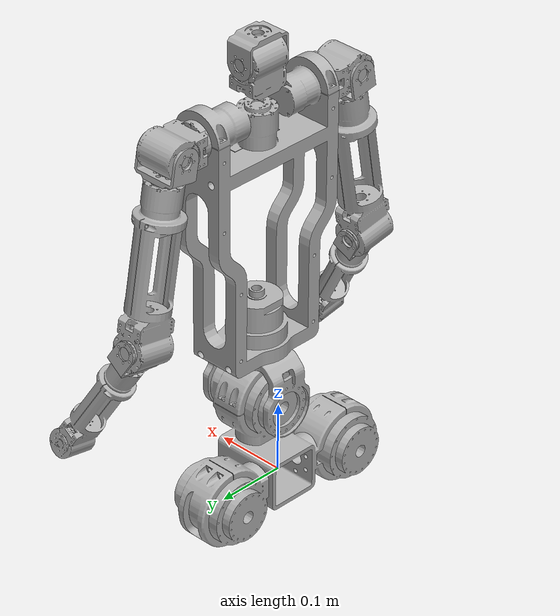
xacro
<?xml version="1.0"?>
<robot xmlns:xacro="http://www.ros.org/wiki/xacro" name="ymbot_xiaoxue_description">
    <xacro:arg name="initial_positions_file" default="initial_positions.yaml" />

    <!-- Import ymbot_xiaoxue_description urdf file -->
    <xacro:include filename="$(find ymbot_xiaoxue_description)/urdf/ymbot_xiaoxue_description.urdf" />

    <!-- Import control_xacro -->
    <xacro:include filename="ymbot_xiaoxue_description.ros2_control.xacro" />

    <xacro:ymbot_xiaoxue_description_ros2_control name="FakeSystem" initial_positions_file="$(arg initial_positions_file)"/>

</robot>

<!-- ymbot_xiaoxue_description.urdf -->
<robot name="ymbot_xiaoxue_description">

  <link name="dummy_link" />
  <joint name="dummy_joint" type="fixed">
    <parent link="dummy_link" />
    <child link="base_link" />
  </joint>

  <link name="base_link">
    <inertial>
      <origin xyz="0.0125889880465297 1.42018774518249E-08 0.0310122702224599" rpy="0 0 0" />
      <mass value="7.85799312195161" />
      <inertia ixx="0.07930667" ixy="0.00000000" ixz="-0.00637667" iyy="0.02874599" iyz="-0.00000421" izz="0.06537176" />
    </inertial>
    <visual>
      <origin xyz="0 0 0" rpy="0 0 0" />
      <geometry>
        <mesh filename="package://ymbot_xiaoxue_description/meshes/base_link.STL" />
      </geometry>
      <material name="">
        <color rgba="0.698039215686274 0.698039215686274 0.698039215686274 1" />
      </material>
    </visual>
    <collision>
      <origin xyz="0 0 0" rpy="0 0 0" />
      <geometry>
        <mesh filename="package://ymbot_xiaoxue_description/meshes/base_link.STL" />
      </geometry>
    </collision>
  </link>

  <link name="Body_Link1">
    <inertial>
      <origin xyz="-0.0423890433231751 8.96778651338082E-10 -0.000137870987974409" rpy="0 0 0" />
      <mass value="0.290021192517815" />
      <inertia ixx="0.00070516" ixy="0.00000000" ixz="0.00000169" iyy="0.00084259" iyz="0.00000000" izz="0.00041912" />
    </inertial>
    <visual>
      <origin xyz="0 0 0" rpy="0 0 0" />
      <geometry>
        <mesh filename="package://ymbot_xiaoxue_description/meshes/Body_Link1.STL" />
      </geometry>
      <material name="">
        <color rgba="0.698039215686274 0.698039215686274 0.698039215686274 1" />
      </material>
    </visual>
    <collision>
      <origin xyz="0 0 0" rpy="0 0 0" />
      <geometry>
        <mesh filename="package://ymbot_xiaoxue_description/meshes/Body_Link1.STL" />
      </geometry>
    </collision>
  </link>
  <joint name="Body_Joint1" type="revolute">
    <origin xyz="0.0404476644611749 0 0.1" rpy="0 1.5707963267949 0" />
    <parent link="base_link" />
    <child link="Body_Link1" />
    <axis xyz="0 0 -1" />
    <limit lower="-1.57" upper="1.57" effort="100" velocity="1.0" />
    <dynamics damping="0" friction="0" />
  </joint>
  <link name="Body_Link2">
    <inertial>
      <origin xyz="0.000408407855018694 5.10949227372492E-09 -0.195083167902317" rpy="0 0 0" />
      <mass value="5.55051252235334" />
      <inertia ixx="0.12763546" ixy="0.00000000" ixz="0.00022650" iyy="0.10724404" iyz="0.00000000" izz="0.02533414" />
    </inertial>
    <visual>
      <origin xyz="0 0 0" rpy="0 0 0" />
      <geometry>
        <mesh filename="package://ymbot_xiaoxue_description/meshes/Body_Link2.STL" />
      </geometry>
      <material name="">
        <color rgba="0.698039215686274 0.698039215686274 0.698039215686274 1" />
      </material>
    </visual>
    <collision>
      <origin xyz="0 0 0" rpy="0 0 0" />
      <geometry>
        <mesh filename="package://ymbot_xiaoxue_description/meshes/Body_Link2.STL" />
      </geometry>
    </collision>
  </link>
  <joint name="Body_Joint2" type="revolute">
    <origin xyz="-0.0725 0 0" rpy="0 1.5707963267949 0" />
    <parent link="Body_Link1" />
    <child link="Body_Link2" />
    <axis xyz="0 0 -1" />
    <limit lower="-1.57" upper="1.57" effort="100" velocity="1.0" />
    <dynamics damping="0" friction="0" />
  </joint>

  <link name="Neck_Link1">
    <inertial>
      <origin xyz="3.908E-11 0.0214 -0.045727" rpy="0 0 0" />
      <mass value="0.48911" />
      <inertia ixx="0.00014569" ixy="0.00000000" ixz="0.00000000" iyy="0.00016149" iyz="0.00003445" izz="0.00009383" />
    </inertial>
    <visual>
      <origin xyz="0 0 0" rpy="0 0 0" />
      <geometry>
        <mesh filename="package://ymbot_xiaoxue_description/meshes/Neck_Link1.STL" />
      </geometry>
      <material name="">
        <color rgba="0.69804 0.69804 0.69804 1" />
      </material>
    </visual>
    <collision>
      <origin xyz="0 0 0" rpy="0 0 0" />
      <geometry>
        <mesh filename="package://ymbot_xiaoxue_description/meshes/Neck_Link1.STL" />
      </geometry>
    </collision>
  </link>
  <joint name="Neck_Joint1" type="revolute">
    <origin xyz="0 0 -0.3751" rpy="0 0 0" />
    <parent link="Body_Link2" />
    <child link="Neck_Link1" />
    <axis xyz="0 0 -1" />
    <limit lower="-1.57" upper="1.57" effort="100" velocity="1.0" />
    <dynamics damping="0" friction="0" />
  </joint>
  <link name="Neck_Link2">
    <inertial>
      <origin xyz="2.7756E-17 -0.020092 -1.5E-05" rpy="0 0 0" />
      <mass value="0.064116" />
      <inertia ixx="0.00005244" ixy="0.00000000" ixz="0.00000000" iyy="0.00004979" iyz="0.00000000" izz="0.00002243" />
    </inertial>
    <visual>
      <origin xyz="0 0 0" rpy="0 0 0" />
      <geometry>
        <mesh filename="package://ymbot_xiaoxue_description/meshes/Neck_Link2.STL" />
      </geometry>
      <material name="">
        <color rgba="0.69804 0.69804 0.69804 1" />
      </material>
    </visual>
    <collision>
      <origin xyz="0 0 0" rpy="0 0 0" />
      <geometry>
        <mesh filename="package://ymbot_xiaoxue_description/meshes/Neck_Link2.STL" />
      </geometry>
    </collision>
  </link>
  <joint name="Neck_Joint2" type="revolute">
    <origin xyz="0 0 -0.049" rpy="1.5708 0 0" />
    <parent link="Neck_Link1" />
    <child link="Neck_Link2" />
    <axis xyz="0 0 1" />
    <limit lower="-1.57" upper="1.57" effort="100" velocity="1.0" />
    <dynamics damping="0" friction="0" />
  </joint>

  <link name="Left_Arm_Link1">
    <inertial>
      <origin xyz="-0.0214 3.908E-11 -0.045727" rpy="0 0 0" />
      <mass value="0.48911" />
      <inertia ixx="0.00016149" ixy="0.00000000" ixz="-0.00003445" iyy="0.00014569" iyz="0.00000000" izz="0.00009383" />
    </inertial>
    <visual>
      <origin xyz="0 0 0" rpy="0 0 0" />
      <geometry>
        <mesh filename="package://ymbot_xiaoxue_description/meshes/Left_Arm_Link1.STL" />
      </geometry>
      <material name="">
        <color rgba="0.69804 0.69804 0.69804 1" />
      </material>
    </visual>
    <collision>
      <origin xyz="0 0 0" rpy="0 0 0" />
      <geometry>
        <mesh filename="package://ymbot_xiaoxue_description/meshes/Left_Arm_Link1.STL" />
      </geometry>
    </collision>
  </link>
  <joint name="Left_Arm_Joint1" type="revolute">
    <origin xyz="0 0.106 -0.35" rpy="1.5708 0 0" />
    <parent link="Body_Link2" />
    <child link="Left_Arm_Link1" />
    <axis xyz="0 0 -1" />
    <limit lower="-1.57" upper="1.57" effort="100" velocity="1.0" />
    <dynamics damping="0" friction="0" />
  </joint>
  <link name="Left_Arm_Link2">
    <inertial>
      <origin xyz="-2.77555756156289E-17 0.0200924845017263 -8.32667268468867E-17" rpy="0 0 0" />
      <mass value="0.0641160510599203" />
      <inertia ixx="0.00005244" ixy="0.00000000" ixz="0.00000000" iyy="0.00004979" iyz="0.00000000" izz="0.00002243" />
    </inertial>
    <visual>
      <origin xyz="0 0 0" rpy="0 0 0" />
      <geometry>
        <mesh filename="package://ymbot_xiaoxue_description/meshes/Left_Arm_Link2.STL" />
      </geometry>
      <material name="">
        <color rgba="0.698039215686274 0.698039215686274 0.698039215686274 1" />
      </material>
    </visual>
    <collision>
      <origin xyz="0 0 0" rpy="0 0 0" />
      <geometry>
        <mesh filename="package://ymbot_xiaoxue_description/meshes/Left_Arm_Link2.STL" />
      </geometry>
    </collision>
  </link>
  <joint name="Left_Arm_Joint2" type="revolute">
    <origin xyz="0 0 -0.049" rpy="-1.5708 1.3963 -1.5708" />
    <parent link="Left_Arm_Link1" />
    <child link="Left_Arm_Link2" />
    <axis xyz="0 0 -1" />
    <limit lower="-1.57" upper="0.34888" effort="100" velocity="1.0" />
    <dynamics damping="0" friction="0" />
  </joint>
  <link name="Left_Arm_Link3">
    <inertial>
      <origin xyz="0.00985903021357649 -2.20541147838427E-05 -0.132597036671886" rpy="0 0 0" />
      <mass value="1.06167641464671" />
      <inertia ixx="0.00910045" ixy="-0.00000023" ixz="0.00098204" iyy="0.00925103" iyz="0.00000195" izz="0.00047148" />
    </inertial>
    <visual>
      <origin xyz="0 0 0" rpy="0 0 0" />
      <geometry>
        <mesh filename="package://ymbot_xiaoxue_description/meshes/Left_Arm_Link3.STL" />
      </geometry>
      <material name="">
        <color rgba="0.698039215686274 0.698039215686274 0.698039215686274 1" />
      </material>
    </visual>
    <collision>
      <origin xyz="0 0 0" rpy="0 0 0" />
      <geometry>
        <mesh filename="package://ymbot_xiaoxue_description/meshes/Left_Arm_Link3.STL" />
      </geometry>
    </collision>
  </link>
  <joint name="Left_Arm_Joint3" type="revolute">
    <origin xyz="0 0.037 0" rpy="1.5708 0 0" />
    <parent link="Left_Arm_Link2" />
    <child link="Left_Arm_Link3" />
    <axis xyz="0 0 -1" />
    <limit lower="-1.57" upper="1.57" effort="100" velocity="1.0" />
    <dynamics damping="0" friction="0" />
  </joint>
  <link name="Left_Arm_Link4">
    <inertial>
      <origin xyz="0.02168044136176 -5.55111512312578E-17 9.71445146547012E-17" rpy="0 0 0" />
      <mass value="0.0476068874411416" />
      <inertia ixx="0.00003339" ixy="0.00000000" ixz="0.00000000" iyy="0.00003565" iyz="0.00000000" izz="0.00001148" />
    </inertial>
    <visual>
      <origin xyz="0 0 0" rpy="0 0 0" />
      <geometry>
        <mesh filename="package://ymbot_xiaoxue_description/meshes/Left_Arm_Link4.STL" />
      </geometry>
      <material name="">
        <color rgba="0.698039215686274 0.698039215686274 0.698039215686274 1" />
      </material>
    </visual>
    <collision>
      <origin xyz="0 0 0" rpy="0 0 0" />
      <geometry>
        <mesh filename="package://ymbot_xiaoxue_description/meshes/Left_Arm_Link4.STL" />
      </geometry>
    </collision>
  </link>
  <joint name="Left_Arm_Joint4" type="revolute">
    <origin xyz="0 0 -0.2264" rpy="-1.5708 1.0472 -1.5708" />
    <parent link="Left_Arm_Link3" />
    <child link="Left_Arm_Link4" />
    <axis xyz="0 0 1" />
    <limit lower="-1.57" upper="1.57" effort="100" velocity="1.0" />
    <dynamics damping="0" friction="0" />
  </joint>
  <link name="Left_Arm_Link5">
    <inertial>
      <origin xyz="0.00236431395225681 -1.8698304649345E-05 0.093776384389925" rpy="0 0 0" />
      <mass value="0.488442136367445" />
      <inertia ixx="0.00199913" ixy="-0.00000002" ixz="-0.00008713" iyy="0.00199979" iyz="-0.00000049" izz="0.00011648" />
    </inertial>
    <visual>
      <origin xyz="0 0 0" rpy="0 0 0" />
      <geometry>
        <mesh filename="package://ymbot_xiaoxue_description/meshes/Left_Arm_Link5.STL" />
      </geometry>
      <material name="">
        <color rgba="0.698039215686274 0.698039215686274 0.698039215686274 1" />
      </material>
    </visual>
    <collision>
      <origin xyz="0 0 0" rpy="0 0 0" />
      <geometry>
        <mesh filename="package://ymbot_xiaoxue_description/meshes/Left_Arm_Link5.STL" />
      </geometry>
    </collision>
  </link>
  <joint name="Left_Arm_Joint5" type="revolute">
    <origin xyz="0.035 0 0" rpy="0 1.5708 0" />
    <parent link="Left_Arm_Link4" />
    <child link="Left_Arm_Link5" />
    <axis xyz="0 0 1" />
    <limit lower="-1.57" upper="1.57" effort="100" velocity="1.0" />
    <dynamics damping="0" friction="0" />
  </joint>

    <link name="left_tool_link">
    <!-- 工具坐标系通常没有物理几何形状 -->
    <inertial>
      <mass value="0"/>
      <origin xyz="0 0 0" rpy="0 0 0"/>
      <inertia ixx="0" ixy="0" ixz="0" iyy="0" iyz="0" izz="0"/>
    </inertial>
  </link>

  <!-- 固定关节，将工具坐标系连接到机械臂末端 -->
  <joint name="left_arm_to_tool" type="fixed">
    <parent link="Left_Arm_Link5"/>
    <child link="left_tool_link"/>
    <origin xyz="0 0 0.35" rpy="0 0 0"/> <!-- 根据实际位置调整 -->
  </joint>

  <link name="Right_Arm_Link1">
    <inertial>
      <origin xyz="0.0214 3.908E-11 0.045727" rpy="0 0 0" />
      <mass value="0.48911" />
      <inertia ixx="0.00016149" ixy="0.00000000" ixz="-0.00003445" iyy="0.00014569" iyz="0.00000000" izz="0.00009383" />
    </inertial>
    <visual>
      <origin xyz="0 0 0" rpy="0 0 0" />
      <geometry>
        <mesh filename="package://ymbot_xiaoxue_description/meshes/Right_Arm_Link1.STL" />
      </geometry>
      <material name="">
        <color rgba="0.69804 0.69804 0.69804 1" />
      </material>
    </visual>
    <collision>
      <origin xyz="0 0 0" rpy="0 0 0" />
      <geometry>
        <mesh filename="package://ymbot_xiaoxue_description/meshes/Right_Arm_Link1.STL" />
      </geometry>
    </collision>
  </link>
  <joint name="Right_Arm_Joint1" type="revolute">
    <origin xyz="0 -0.106 -0.35" rpy="1.5708 0 0" />
    <parent link="Body_Link2" />
    <child link="Right_Arm_Link1" />
    <axis xyz="0 0 1" />
    <limit lower="-1.57" upper="1.57" effort="100" velocity="1.0" />
    <dynamics damping="0" friction="0" />
  </joint>
  <link name="Right_Arm_Link2">
    <inertial>
      <origin xyz="-1.11022302462516E-16 0.0200924845017262 -2.77555756156289E-17" rpy="0 0 0" />
      <mass value="0.0641160510599202" />
      <inertia ixx="0.00005244" ixy="0.00000000" ixz="0.00000000" iyy="0.00004979" iyz="0.00000000" izz="0.00002243" />
    </inertial>
    <visual>
      <origin xyz="0 0 0" rpy="0 0 0" />
      <geometry>
        <mesh filename="package://ymbot_xiaoxue_description/meshes/Right_Arm_Link2.STL" />
      </geometry>
      <material name="">
        <color rgba="0.698039215686274 0.698039215686274 0.698039215686274 1" />
      </material>
    </visual>
    <collision>
      <origin xyz="0 0 0" rpy="0 0 0" />
      <geometry>
        <mesh filename="package://ymbot_xiaoxue_description/meshes/Right_Arm_Link2.STL" />
      </geometry>
    </collision>
  </link>
  <joint name="Right_Arm_Joint2" type="revolute">
    <origin xyz="0 0 0.049" rpy="1.5708 1.3963 1.5708" />
    <parent link="Right_Arm_Link1" />
    <child link="Right_Arm_Link2" />
    <axis xyz="0 0 -1" />
    <limit lower="-1.57" upper="0.34888" effort="100" velocity="1.0" />
    <dynamics damping="0" friction="0" />
  </joint>
  <link name="Right_Arm_Link3">
    <inertial>
      <origin xyz="-0.00985903027362633 2.20542677700497E-05 -0.132597036494793" rpy="0 0 0" />
      <mass value="1.06167640906384" />
      <inertia ixx="0.00910045" ixy="-0.00000023" ixz="-0.00098204" iyy="0.00925103" iyz="-0.00000195" izz="0.00047148" />
    </inertial>
    <visual>
      <origin xyz="0 0 0" rpy="0 0 0" />
      <geometry>
        <mesh filename="package://ymbot_xiaoxue_description/meshes/Right_Arm_Link3.STL" />
      </geometry>
      <material name="">
        <color rgba="0.698039215686274 0.698039215686274 0.698039215686274 1" />
      </material>
    </visual>
    <collision>
      <origin xyz="0 0 0" rpy="0 0 0" />
      <geometry>
        <mesh filename="package://ymbot_xiaoxue_description/meshes/Right_Arm_Link3.STL" />
      </geometry>
    </collision>
  </link>
  <joint name="Right_Arm_Joint3" type="revolute">
    <origin xyz="0 0.037 0" rpy="1.5708 0 0" />
    <parent link="Right_Arm_Link2" />
    <child link="Right_Arm_Link3" />
    <axis xyz="0 0 -1" />
    <limit lower="-1.57" upper="1.57" effort="100" velocity="1.0" />
    <dynamics damping="0" friction="0" />
  </joint>
  <link name="Right_Arm_Link4">
    <inertial>
      <origin xyz="0.0216804413617601 2.77555756156289E-17 -3.33066907387547E-16" rpy="0 0 0" />
      <mass value="0.0476068874411416" />
      <inertia ixx="0.00003339" ixy="0.00000000" ixz="0.00000000" iyy="0.00003565" iyz="0.00000000" izz="0.00001148" />
    </inertial>
    <visual>
      <origin xyz="0 0 0" rpy="0 0 0" />
      <geometry>
        <mesh filename="package://ymbot_xiaoxue_description/meshes/Right_Arm_Link4.STL" />
      </geometry>
      <material name="">
        <color rgba="0.698039215686274 0.698039215686274 0.698039215686274 1" />
      </material>
    </visual>
    <collision>
      <origin xyz="0 0 0" rpy="0 0 0" />
      <geometry>
        <mesh filename="package://ymbot_xiaoxue_description/meshes/Right_Arm_Link4.STL" />
      </geometry>
    </collision>
  </link>
  <joint name="Right_Arm_Joint4" type="revolute">
    <origin xyz="0 0 -0.2264" rpy="-1.5708 1.0472 -1.5708" />
    <parent link="Right_Arm_Link3" />
    <child link="Right_Arm_Link4" />
    <axis xyz="0 0 -1" />
    <limit lower="-1.57" upper="1.57" effort="100" velocity="1.0" />
    <dynamics damping="0" friction="0" />
  </joint>
  <link name="Right_Arm_Link5">
    <inertial>
      <origin xyz="-0.00236431428227268 1.87001911635398E-05 0.0937763652633915" rpy="0 0 0" />
      <mass value="0.488442240065499" />
      <inertia ixx="0.00199913" ixy="-0.00000002" ixz="0.00008713" iyy="0.00199979" iyz="0.00000049" izz="0.00011648" />
    </inertial>
    <visual>
      <origin xyz="0 0 0" rpy="0 0 0" />
      <geometry>
        <mesh filename="package://ymbot_xiaoxue_description/meshes/Right_Arm_Link5.STL" />
      </geometry>
      <material name="">
        <color rgba="0.698039215686274 0.698039215686274 0.698039215686274 1" />
      </material>
    </visual>
    <collision>
      <origin xyz="0 0 0" rpy="0 0 0" />
      <geometry>
        <mesh filename="package://ymbot_xiaoxue_description/meshes/Right_Arm_Link5.STL" />
      </geometry>
    </collision>
  </link>
  <joint name="Right_Arm_Joint5" type="revolute">
    <origin xyz="0.035 0 0" rpy="3.1416 1.5708 3.1416" />
    <parent link="Right_Arm_Link4" />
    <child link="Right_Arm_Link5" />
    <axis xyz="0 0 1" />
    <limit lower="-1.57" upper="1.57" effort="100" velocity="1.0" />
    <dynamics damping="0" friction="0" />
  </joint>

  <link name="right_tool_link">
    <!-- 工具坐标系通常没有物理几何形状 -->
    <inertial>
      <mass value="0"/>
      <origin xyz="0 0 0" rpy="0 0 0"/>
      <inertia ixx="0" ixy="0" ixz="0" iyy="0" iyz="0" izz="0"/>
    </inertial>
  </link>

  <!-- 固定关节，将工具坐标系连接到机械臂末端 -->
  <joint name="right_arm_to_tool" type="fixed">
    <parent link="Right_Arm_Link5"/>
    <child link="right_tool_link"/>
    <origin xyz="0 0 0.35" rpy="0 0 0"/> <!-- 根据实际位置调整 -->
  </joint>

</robot>
